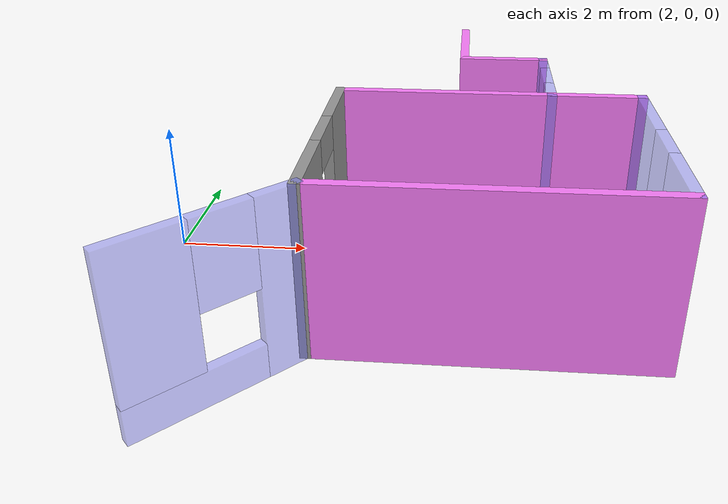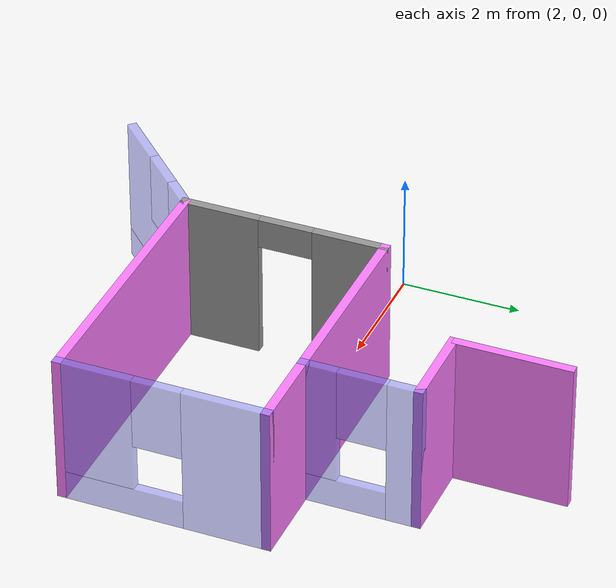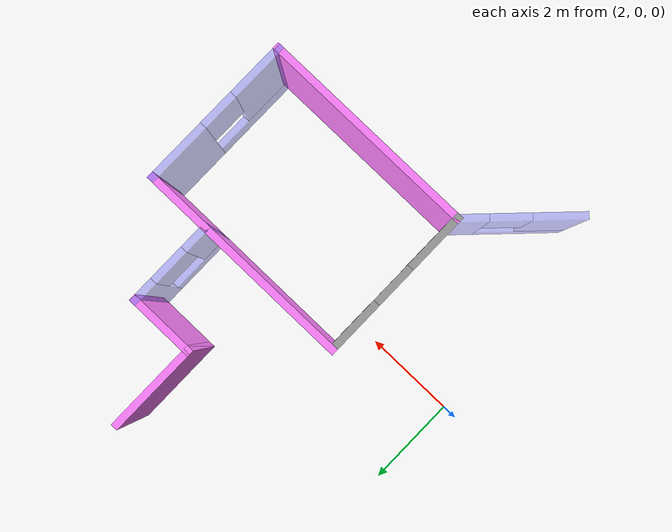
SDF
<sdf version="1.6">
 <model name="house">
  <link name="Wall_10">
   <pose>3.72086 -3.525 0 0 0 -2.35619</pose>
   <inertial>
    <mass>1</mass>
    <inertia><ixx>1</ixx><ixy>0</ixy><ixz>0</ixz><iyy>1</iyy><iyz>0</iyz><izz>1</izz></inertia>
   </inertial>
   <visual name="Wall_10_Visual_0">
    <pose>-0.917996 0 1.25 0 -0 0</pose>
    <geometry><box><size>0.664008 0.15 2.5</size></box></geometry>
    <material>
     <script><uri>file://media/materials/scripts/gazebo.material</uri><name>Gazebo/Grey</name></script>
     <ambient>0.5 0.5 1 0.5</ambient>
     <shader type="pixel"><normal_map>__default__</normal_map></shader>
     <diffuse>0.7 0.7 0.7 1</diffuse>
     <specular>0.01 0.01 0.01 1</specular>
     <emissive>0 0 0 1</emissive>
    </material>
    <meta><layer>0</layer></meta>
   </visual>
   <visual name="Wall_10_Visual_1">
    <pose>0.332004 0 0.25 0 -0 0</pose>
    <geometry><box><size>1.83599 0.15 0.5</size></box></geometry>
    <material>
     <script><uri>file://media/materials/scripts/gazebo.material</uri><name>Gazebo/Grey</name></script>
     <ambient>0.5 0.5 1 0.5</ambient>
     <shader type="pixel"><normal_map>__default__</normal_map></shader>
     <diffuse>0.7 0.7 0.7 1</diffuse>
     <specular>0.01 0.01 0.01 1</specular>
     <emissive>0 0 0 1</emissive>
    </material>
    <meta><layer>0</layer></meta>
   </visual>
   <visual name="Wall_10_Visual_2">
    <pose>0.732004 0 1.5 0 -0 0</pose>
    <geometry><box><size>1.03599 0.15 2</size></box></geometry>
    <material>
     <script><uri>file://media/materials/scripts/gazebo.material</uri><name>Gazebo/Grey</name></script>
     <ambient>0.5 0.5 1 0.5</ambient>
     <shader type="pixel"><normal_map>__default__</normal_map></shader>
     <diffuse>0.7 0.7 0.7 1</diffuse>
     <specular>0.01 0.01 0.01 1</specular>
     <emissive>0 0 0 1</emissive>
    </material>
    <meta><layer>0</layer></meta>
   </visual>
   <visual name="Wall_10_Visual_3">
    <pose>-0.185992 0 1.9 0 -0 0</pose>
    <geometry><box><size>0.8 0.15 1.2</size></box></geometry>
    <material>
     <script><uri>file://media/materials/scripts/gazebo.material</uri><name>Gazebo/Grey</name></script>
     <ambient>0.5 0.5 1 0.5</ambient>
     <shader type="pixel"><normal_map>__default__</normal_map></shader>
     <diffuse>0.7 0.7 0.7 1</diffuse>
     <specular>0.01 0.01 0.01 1</specular>
     <emissive>0 0 0 1</emissive>
    </material>
    <meta><layer>0</layer></meta>
   </visual>
   <collision name="Wall_10_Collision_0">
    <pose>-0.917996 0 1.25 0 -0 0</pose>
    <geometry><box><size>0.664008 0.15 2.5</size></box></geometry>
    <surface>
     <friction>
      <ode><mu>1</mu><mu2>1</mu2><fdir1>0 0 0</fdir1><slip1>0</slip1><slip2>0</slip2></ode>
      <torsional>
       <coefficient>1</coefficient>
       <patch_radius>0</patch_radius>
       <surface_radius>0</surface_radius>
       <use_patch_radius>1</use_patch_radius>
       <ode><slip>0</slip></ode>
      </torsional>
     </friction>
     <bounce><restitution_coefficient>0</restitution_coefficient><threshold>1e+06</threshold></bounce>
     <contact>
      <collide_without_contact>0</collide_without_contact>
      <collide_without_contact_bitmask>1</collide_without_contact_bitmask>
      <collide_bitmask>1</collide_bitmask>
      <ode>
       <soft_cfm>0</soft_cfm>
       <soft_erp>0.2</soft_erp>
       <kp>1e+13</kp>
       <kd>1</kd>
       <max_vel>0.01</max_vel>
       <min_depth>0</min_depth>
      </ode>
      <bullet>
       <split_impulse>1</split_impulse>
       <split_impulse_penetration_threshold>-0.01</split_impulse_penetration_threshold>
       <soft_cfm>0</soft_cfm>
       <soft_erp>0.2</soft_erp>
       <kp>1e+13</kp>
       <kd>1</kd>
      </bullet>
     </contact>
    </surface>
   </collision>
   <collision name="Wall_10_Collision_1">
    <pose>0.332004 0 0.25 0 -0 0</pose>
    <geometry><box><size>1.83599 0.15 0.5</size></box></geometry>
    <surface>
     <friction>
      <ode><mu>1</mu><mu2>1</mu2><fdir1>0 0 0</fdir1><slip1>0</slip1><slip2>0</slip2></ode>
      <torsional>
       <coefficient>1</coefficient>
       <patch_radius>0</patch_radius>
       <surface_radius>0</surface_radius>
       <use_patch_radius>1</use_patch_radius>
       <ode><slip>0</slip></ode>
      </torsional>
     </friction>
     <bounce><restitution_coefficient>0</restitution_coefficient><threshold>1e+06</threshold></bounce>
     <contact>
      <collide_without_contact>0</collide_without_contact>
      <collide_without_contact_bitmask>1</collide_without_contact_bitmask>
      <collide_bitmask>1</collide_bitmask>
      <ode>
       <soft_cfm>0</soft_cfm>
       <soft_erp>0.2</soft_erp>
       <kp>1e+13</kp>
       <kd>1</kd>
       <max_vel>0.01</max_vel>
       <min_depth>0</min_depth>
      </ode>
      <bullet>
       <split_impulse>1</split_impulse>
       <split_impulse_penetration_threshold>-0.01</split_impulse_penetration_threshold>
       <soft_cfm>0</soft_cfm>
       <soft_erp>0.2</soft_erp>
       <kp>1e+13</kp>
       <kd>1</kd>
      </bullet>
     </contact>
    </surface>
   </collision>
   <collision name="Wall_10_Collision_2">
    <pose>0.732004 0 1.5 0 -0 0</pose>
    <geometry><box><size>1.03599 0.15 2</size></box></geometry>
    <surface>
     <friction>
      <ode><mu>1</mu><mu2>1</mu2><fdir1>0 0 0</fdir1><slip1>0</slip1><slip2>0</slip2></ode>
      <torsional>
       <coefficient>1</coefficient>
       <patch_radius>0</patch_radius>
       <surface_radius>0</surface_radius>
       <use_patch_radius>1</use_patch_radius>
       <ode><slip>0</slip></ode>
      </torsional>
     </friction>
     <bounce><restitution_coefficient>0</restitution_coefficient><threshold>1e+06</threshold></bounce>
     <contact>
      <collide_without_contact>0</collide_without_contact>
      <collide_without_contact_bitmask>1</collide_without_contact_bitmask>
      <collide_bitmask>1</collide_bitmask>
      <ode>
       <soft_cfm>0</soft_cfm>
       <soft_erp>0.2</soft_erp>
       <kp>1e+13</kp>
       <kd>1</kd>
       <max_vel>0.01</max_vel>
       <min_depth>0</min_depth>
      </ode>
      <bullet>
       <split_impulse>1</split_impulse>
       <split_impulse_penetration_threshold>-0.01</split_impulse_penetration_threshold>
       <soft_cfm>0</soft_cfm>
       <soft_erp>0.2</soft_erp>
       <kp>1e+13</kp>
       <kd>1</kd>
      </bullet>
     </contact>
    </surface>
   </collision>
   <collision name="Wall_10_Collision_3">
    <pose>-0.185992 0 1.9 0 -0 0</pose>
    <geometry><box><size>0.8 0.15 1.2</size></box></geometry>
    <surface>
     <friction>
      <ode><mu>1</mu><mu2>1</mu2><fdir1>0 0 0</fdir1><slip1>0</slip1><slip2>0</slip2></ode>
      <torsional>
       <coefficient>1</coefficient>
       <patch_radius>0</patch_radius>
       <surface_radius>0</surface_radius>
       <use_patch_radius>1</use_patch_radius>
       <ode><slip>0</slip></ode>
      </torsional>
     </friction>
     <bounce><restitution_coefficient>0</restitution_coefficient><threshold>1e+06</threshold></bounce>
     <contact>
      <collide_without_contact>0</collide_without_contact>
      <collide_without_contact_bitmask>1</collide_without_contact_bitmask>
      <collide_bitmask>1</collide_bitmask>
      <ode>
       <soft_cfm>0</soft_cfm>
       <soft_erp>0.2</soft_erp>
       <kp>1e+13</kp>
       <kd>1</kd>
       <max_vel>0.01</max_vel>
       <min_depth>0</min_depth>
      </ode>
      <bullet>
       <split_impulse>1</split_impulse>
       <split_impulse_penetration_threshold>-0.01</split_impulse_penetration_threshold>
       <soft_cfm>0</soft_cfm>
       <soft_erp>0.2</soft_erp>
       <kp>1e+13</kp>
       <kd>1</kd>
      </bullet>
     </contact>
    </surface>
   </collision>
  </link>
  <link name="Wall_24">
   <pose>4.55171 -1.01915 0 0 -0 1.5708</pose>
   <inertial>
    <mass>1</mass>
    <inertia><ixx>1</ixx><ixy>0</ixy><ixz>0</ixz><iyy>1</iyy><iyz>0</iyz><izz>1</izz></inertia>
   </inertial>
   <visual name="Wall_24_Visual_0">
    <pose>-1.0809 0 1.25 0 -0 0</pose>
    <geometry><box><size>1.3382 0.15 2.5</size></box></geometry>
    <material>
     <script><uri>file://media/materials/scripts/gazebo.material</uri><name>Gazebo/Grey</name></script>
     <ambient>0.5 0.5 0.5 0.5</ambient>
     <shader type="pixel"><normal_map>__default__</normal_map></shader>
     <diffuse>0.7 0.7 0.7 1</diffuse>
     <specular>0.01 0.01 0.01 1</specular>
     <emissive>0 0 0 1</emissive>
    </material>
    <meta><layer>0</layer></meta>
   </visual>
   <visual name="Wall_24_Visual_1">
    <pose>1.1191 0 1.25 0 -0 0</pose>
    <geometry><box><size>1.2618 0.15 2.5</size></box></geometry>
    <material>
     <script><uri>file://media/materials/scripts/gazebo.material</uri><name>Gazebo/Grey</name></script>
     <ambient>0.5 0.5 0.5 0.5</ambient>
     <shader type="pixel"><normal_map>__default__</normal_map></shader>
     <diffuse>0.7 0.7 0.7 1</diffuse>
     <specular>0.01 0.01 0.01 1</specular>
     <emissive>0 0 0 1</emissive>
    </material>
    <meta><layer>0</layer></meta>
   </visual>
   <visual name="Wall_24_Visual_2">
    <pose>0.038199 0 2.25 0 -0 0</pose>
    <geometry><box><size>0.9 0.15 0.5</size></box></geometry>
    <material>
     <script><uri>file://media/materials/scripts/gazebo.material</uri><name>Gazebo/Grey</name></script>
     <ambient>0.5 0.5 0.5 0.5</ambient>
     <shader type="pixel"><normal_map>__default__</normal_map></shader>
     <diffuse>0.7 0.7 0.7 1</diffuse>
     <specular>0.01 0.01 0.01 1</specular>
     <emissive>0 0 0 1</emissive>
    </material>
    <meta><layer>0</layer></meta>
   </visual>
   <collision name="Wall_24_Collision_0">
    <pose>-1.0809 0 1.25 0 -0 0</pose>
    <geometry><box><size>1.3382 0.15 2.5</size></box></geometry>
    <surface>
     <friction>
      <ode><mu>1</mu><mu2>1</mu2><fdir1>0 0 0</fdir1><slip1>0</slip1><slip2>0</slip2></ode>
      <torsional>
       <coefficient>1</coefficient>
       <patch_radius>0</patch_radius>
       <surface_radius>0</surface_radius>
       <use_patch_radius>1</use_patch_radius>
       <ode><slip>0</slip></ode>
      </torsional>
     </friction>
     <bounce><restitution_coefficient>0</restitution_coefficient><threshold>1e+06</threshold></bounce>
     <contact>
      <collide_without_contact>0</collide_without_contact>
      <collide_without_contact_bitmask>1</collide_without_contact_bitmask>
      <collide_bitmask>1</collide_bitmask>
      <ode>
       <soft_cfm>0</soft_cfm>
       <soft_erp>0.2</soft_erp>
       <kp>1e+13</kp>
       <kd>1</kd>
       <max_vel>0.01</max_vel>
       <min_depth>0</min_depth>
      </ode>
      <bullet>
       <split_impulse>1</split_impulse>
       <split_impulse_penetration_threshold>-0.01</split_impulse_penetration_threshold>
       <soft_cfm>0</soft_cfm>
       <soft_erp>0.2</soft_erp>
       <kp>1e+13</kp>
       <kd>1</kd>
      </bullet>
     </contact>
    </surface>
   </collision>
   <collision name="Wall_24_Collision_1">
    <pose>1.1191 0 1.25 0 -0 0</pose>
    <geometry><box><size>1.2618 0.15 2.5</size></box></geometry>
    <surface>
     <friction>
      <ode><mu>1</mu><mu2>1</mu2><fdir1>0 0 0</fdir1><slip1>0</slip1><slip2>0</slip2></ode>
      <torsional>
       <coefficient>1</coefficient>
       <patch_radius>0</patch_radius>
       <surface_radius>0</surface_radius>
       <use_patch_radius>1</use_patch_radius>
       <ode><slip>0</slip></ode>
      </torsional>
     </friction>
     <bounce><restitution_coefficient>0</restitution_coefficient><threshold>1e+06</threshold></bounce>
     <contact>
      <collide_without_contact>0</collide_without_contact>
      <collide_without_contact_bitmask>1</collide_without_contact_bitmask>
      <collide_bitmask>1</collide_bitmask>
      <ode>
       <soft_cfm>0</soft_cfm>
       <soft_erp>0.2</soft_erp>
       <kp>1e+13</kp>
       <kd>1</kd>
       <max_vel>0.01</max_vel>
       <min_depth>0</min_depth>
      </ode>
      <bullet>
       <split_impulse>1</split_impulse>
       <split_impulse_penetration_threshold>-0.01</split_impulse_penetration_threshold>
       <soft_cfm>0</soft_cfm>
       <soft_erp>0.2</soft_erp>
       <kp>1e+13</kp>
       <kd>1</kd>
      </bullet>
     </contact>
    </surface>
   </collision>
   <collision name="Wall_24_Collision_2">
    <pose>0.038199 0 2.25 0 -0 0</pose>
    <geometry><box><size>0.9 0.15 0.5</size></box></geometry>
    <surface>
     <friction>
      <ode><mu>1</mu><mu2>1</mu2><fdir1>0 0 0</fdir1><slip1>0</slip1><slip2>0</slip2></ode>
      <torsional>
       <coefficient>1</coefficient>
       <patch_radius>0</patch_radius>
       <surface_radius>0</surface_radius>
       <use_patch_radius>1</use_patch_radius>
       <ode><slip>0</slip></ode>
      </torsional>
     </friction>
     <bounce><restitution_coefficient>0</restitution_coefficient><threshold>1e+06</threshold></bounce>
     <contact>
      <collide_without_contact>0</collide_without_contact>
      <collide_without_contact_bitmask>1</collide_without_contact_bitmask>
      <collide_bitmask>1</collide_bitmask>
      <ode>
       <soft_cfm>0</soft_cfm>
       <soft_erp>0.2</soft_erp>
       <kp>1e+13</kp>
       <kd>1</kd>
       <max_vel>0.01</max_vel>
       <min_depth>0</min_depth>
      </ode>
      <bullet>
       <split_impulse>1</split_impulse>
       <split_impulse_penetration_threshold>-0.01</split_impulse_penetration_threshold>
       <soft_cfm>0</soft_cfm>
       <soft_erp>0.2</soft_erp>
       <kp>1e+13</kp>
       <kd>1</kd>
      </bullet>
     </contact>
    </surface>
   </collision>
  </link>
  <link name="Wall_25">
   <pose>6.17671 0.655851 0 0 -0 0</pose>
   <inertial>
    <mass>1</mass>
    <inertia><ixx>1</ixx><ixy>0</ixy><ixz>0</ixz><iyy>1</iyy><iyz>0</iyz><izz>1</izz></inertia>
   </inertial>
   <visual name="Wall_25_Visual">
    <pose>0 0 1.25 0 -0 0</pose>
    <geometry><box><size>3.4 0.15 2.5</size></box></geometry>
    <material>
     <script><uri>file://media/materials/scripts/gazebo.material</uri><name>Gazebo/Grey</name></script>
     <ambient>1 0.5 1 1</ambient>
     <shader type="pixel"><normal_map>__default__</normal_map></shader>
     <diffuse>0.7 0.7 0.7 1</diffuse>
     <specular>0.01 0.01 0.01 1</specular>
     <emissive>0 0 0 1</emissive>
    </material>
    <meta><layer>0</layer></meta>
   </visual>
   <collision name="Wall_25_Collision">
    <pose>0 0 1.25 0 -0 0</pose>
    <geometry><box><size>3.4 0.15 2.5</size></box></geometry>
    <surface>
     <friction>
      <ode><mu>1</mu><mu2>1</mu2><fdir1>0 0 0</fdir1><slip1>0</slip1><slip2>0</slip2></ode>
      <torsional>
       <coefficient>1</coefficient>
       <patch_radius>0</patch_radius>
       <surface_radius>0</surface_radius>
       <use_patch_radius>1</use_patch_radius>
       <ode><slip>0</slip></ode>
      </torsional>
     </friction>
     <bounce><restitution_coefficient>0</restitution_coefficient><threshold>1e+06</threshold></bounce>
     <contact>
      <collide_without_contact>0</collide_without_contact>
      <collide_without_contact_bitmask>1</collide_without_contact_bitmask>
      <collide_bitmask>1</collide_bitmask>
      <ode>
       <soft_cfm>0</soft_cfm>
       <soft_erp>0.2</soft_erp>
       <kp>1e+13</kp>
       <kd>1</kd>
       <max_vel>0.01</max_vel>
       <min_depth>0</min_depth>
      </ode>
      <bullet>
       <split_impulse>1</split_impulse>
       <split_impulse_penetration_threshold>-0.01</split_impulse_penetration_threshold>
       <soft_cfm>0</soft_cfm>
       <soft_erp>0.2</soft_erp>
       <kp>1e+13</kp>
       <kd>1</kd>
      </bullet>
     </contact>
    </surface>
   </collision>
  </link>
  <link name="Wall_4">
   <pose>6.45171 3.43085 0 0 0 -1.5708</pose>
   <inertial>
    <mass>1</mass>
    <inertia><ixx>1</ixx><ixy>0</ixy><ixz>0</ixz><iyy>1</iyy><iyz>0</iyz><izz>1</izz></inertia>
   </inertial>
   <visual name="Wall_4_Visual">
    <pose>0 0 1.25 0 -0 0</pose>
    <geometry><box><size>2 0.15 2.5</size></box></geometry>
    <material>
     <script><uri>file://media/materials/scripts/gazebo.material</uri><name>Gazebo/Grey</name></script>
     <ambient>1 0.5 1 1</ambient>
     <shader type="pixel"><normal_map>__default__</normal_map></shader>
     <diffuse>0.7 0.7 0.7 1</diffuse>
     <specular>0.01 0.01 0.01 1</specular>
     <emissive>0 0 0 1</emissive>
    </material>
    <meta><layer>0</layer></meta>
   </visual>
   <collision name="Wall_4_Collision">
    <pose>0 0 1.25 0 -0 0</pose>
    <geometry><box><size>2 0.15 2.5</size></box></geometry>
    <surface>
     <friction>
      <ode><mu>1</mu><mu2>1</mu2><fdir1>0 0 0</fdir1><slip1>0</slip1><slip2>0</slip2></ode>
      <torsional>
       <coefficient>1</coefficient>
       <patch_radius>0</patch_radius>
       <surface_radius>0</surface_radius>
       <use_patch_radius>1</use_patch_radius>
       <ode><slip>0</slip></ode>
      </torsional>
     </friction>
     <bounce><restitution_coefficient>0</restitution_coefficient><threshold>1e+06</threshold></bounce>
     <contact>
      <collide_without_contact>0</collide_without_contact>
      <collide_without_contact_bitmask>1</collide_without_contact_bitmask>
      <collide_bitmask>1</collide_bitmask>
      <ode>
       <soft_cfm>0</soft_cfm>
       <soft_erp>0.2</soft_erp>
       <kp>1e+13</kp>
       <kd>1</kd>
       <max_vel>0.01</max_vel>
       <min_depth>0</min_depth>
      </ode>
      <bullet>
       <split_impulse>1</split_impulse>
       <split_impulse_penetration_threshold>-0.01</split_impulse_penetration_threshold>
       <soft_cfm>0</soft_cfm>
       <soft_erp>0.2</soft_erp>
       <kp>1e+13</kp>
       <kd>1</kd>
      </bullet>
     </contact>
    </surface>
   </collision>
  </link>
  <link name="Wall_5">
   <pose>7.12671 2.50585 0 0 -0 0</pose>
   <inertial>
    <mass>1</mass>
    <inertia><ixx>1</ixx><ixy>0</ixy><ixz>0</ixz><iyy>1</iyy><iyz>0</iyz><izz>1</izz></inertia>
   </inertial>
   <visual name="Wall_5_Visual">
    <pose>0 0 1.25 0 -0 0</pose>
    <geometry><box><size>1.5 0.15 2.5</size></box></geometry>
    <material>
     <script><uri>file://media/materials/scripts/gazebo.material</uri><name>Gazebo/Grey</name></script>
     <ambient>1 0.5 1 1</ambient>
     <shader type="pixel"><normal_map>__default__</normal_map></shader>
     <diffuse>0.7 0.7 0.7 1</diffuse>
     <specular>0.01 0.01 0.01 1</specular>
     <emissive>0 0 0 1</emissive>
    </material>
    <meta><layer>0</layer></meta>
   </visual>
   <collision name="Wall_5_Collision">
    <pose>0 0 1.25 0 -0 0</pose>
    <geometry><box><size>1.5 0.15 2.5</size></box></geometry>
    <surface>
     <friction>
      <ode><mu>1</mu><mu2>1</mu2><fdir1>0 0 0</fdir1><slip1>0</slip1><slip2>0</slip2></ode>
      <torsional>
       <coefficient>1</coefficient>
       <patch_radius>0</patch_radius>
       <surface_radius>0</surface_radius>
       <use_patch_radius>1</use_patch_radius>
       <ode><slip>0</slip></ode>
      </torsional>
     </friction>
     <bounce><restitution_coefficient>0</restitution_coefficient><threshold>1e+06</threshold></bounce>
     <contact>
      <collide_without_contact>0</collide_without_contact>
      <collide_without_contact_bitmask>1</collide_without_contact_bitmask>
      <collide_bitmask>1</collide_bitmask>
      <ode>
       <soft_cfm>0</soft_cfm>
       <soft_erp>0.2</soft_erp>
       <kp>1e+13</kp>
       <kd>1</kd>
       <max_vel>0.01</max_vel>
       <min_depth>0</min_depth>
      </ode>
      <bullet>
       <split_impulse>1</split_impulse>
       <split_impulse_penetration_threshold>-0.01</split_impulse_penetration_threshold>
       <soft_cfm>0</soft_cfm>
       <soft_erp>0.2</soft_erp>
       <kp>1e+13</kp>
       <kd>1</kd>
      </bullet>
     </contact>
    </surface>
   </collision>
  </link>
  <link name="Wall_6">
   <pose>7.80171 1.58085 0 0 0 -1.5708</pose>
   <inertial>
    <mass>1</mass>
    <inertia><ixx>1</ixx><ixy>0</ixy><ixz>0</ixz><iyy>1</iyy><iyz>0</iyz><izz>1</izz></inertia>
   </inertial>
   <visual name="Wall_6_Visual_0">
    <pose>-0.718403 0 1.25 0 -0 0</pose>
    <geometry><box><size>0.563194 0.15 2.5</size></box></geometry>
    <material>
     <script><uri>file://media/materials/scripts/gazebo.material</uri><name>Gazebo/Grey</name></script>
     <ambient>0.5 0.5 1 0.5</ambient>
     <shader type="pixel"><normal_map>__default__</normal_map></shader>
     <diffuse>0.7 0.7 0.7 1</diffuse>
     <specular>0.01 0.01 0.01 1</specular>
     <emissive>0 0 0 1</emissive>
    </material>
    <meta><layer>0</layer></meta>
   </visual>
   <visual name="Wall_6_Visual_1">
    <pose>0.281597 0 0.25 0 -0 0</pose>
    <geometry><box><size>1.43681 0.15 0.5</size></box></geometry>
    <material>
     <script><uri>file://media/materials/scripts/gazebo.material</uri><name>Gazebo/Grey</name></script>
     <ambient>0.5 0.5 1 0.5</ambient>
     <shader type="pixel"><normal_map>__default__</normal_map></shader>
     <diffuse>0.7 0.7 0.7 1</diffuse>
     <specular>0.01 0.01 0.01 1</specular>
     <emissive>0 0 0 1</emissive>
    </material>
    <meta><layer>0</layer></meta>
   </visual>
   <visual name="Wall_6_Visual_2">
    <pose>0.681597 0 1.5 0 -0 0</pose>
    <geometry><box><size>0.636806 0.15 2</size></box></geometry>
    <material>
     <script><uri>file://media/materials/scripts/gazebo.material</uri><name>Gazebo/Grey</name></script>
     <ambient>0.5 0.5 1 0.5</ambient>
     <shader type="pixel"><normal_map>__default__</normal_map></shader>
     <diffuse>0.7 0.7 0.7 1</diffuse>
     <specular>0.01 0.01 0.01 1</specular>
     <emissive>0 0 0 1</emissive>
    </material>
    <meta><layer>0</layer></meta>
   </visual>
   <visual name="Wall_6_Visual_3">
    <pose>-0.036806 0 1.9 0 -0 0</pose>
    <geometry><box><size>0.8 0.15 1.2</size></box></geometry>
    <material>
     <script><uri>file://media/materials/scripts/gazebo.material</uri><name>Gazebo/Grey</name></script>
     <ambient>0.5 0.5 1 0.5</ambient>
     <shader type="pixel"><normal_map>__default__</normal_map></shader>
     <diffuse>0.7 0.7 0.7 1</diffuse>
     <specular>0.01 0.01 0.01 1</specular>
     <emissive>0 0 0 1</emissive>
    </material>
    <meta><layer>0</layer></meta>
   </visual>
   <collision name="Wall_6_Collision_3">
    <pose>-0.036806 0 1.9 0 -0 0</pose>
    <geometry><box><size>0.8 0.15 1.2</size></box></geometry>
    <surface>
     <friction>
      <ode><mu>1</mu><mu2>1</mu2><fdir1>0 0 0</fdir1><slip1>0</slip1><slip2>0</slip2></ode>
      <torsional>
       <coefficient>1</coefficient>
       <patch_radius>0</patch_radius>
       <surface_radius>0</surface_radius>
       <use_patch_radius>1</use_patch_radius>
       <ode><slip>0</slip></ode>
      </torsional>
     </friction>
     <bounce><restitution_coefficient>0</restitution_coefficient><threshold>1e+06</threshold></bounce>
     <contact>
      <collide_without_contact>0</collide_without_contact>
      <collide_without_contact_bitmask>1</collide_without_contact_bitmask>
      <collide_bitmask>1</collide_bitmask>
      <ode>
       <soft_cfm>0</soft_cfm>
       <soft_erp>0.2</soft_erp>
       <kp>1e+13</kp>
       <kd>1</kd>
       <max_vel>0.01</max_vel>
       <min_depth>0</min_depth>
      </ode>
      <bullet>
       <split_impulse>1</split_impulse>
       <split_impulse_penetration_threshold>-0.01</split_impulse_penetration_threshold>
       <soft_cfm>0</soft_cfm>
       <soft_erp>0.2</soft_erp>
       <kp>1e+13</kp>
       <kd>1</kd>
      </bullet>
     </contact>
    </surface>
   </collision>
   <collision name="Wall_6_Collision_0">
    <pose>-0.718403 0 1.25 0 -0 0</pose>
    <geometry><box><size>0.563194 0.15 2.5</size></box></geometry>
    <surface>
     <friction>
      <ode><mu>1</mu><mu2>1</mu2><fdir1>0 0 0</fdir1><slip1>0</slip1><slip2>0</slip2></ode>
      <torsional>
       <coefficient>1</coefficient>
       <patch_radius>0</patch_radius>
       <surface_radius>0</surface_radius>
       <use_patch_radius>1</use_patch_radius>
       <ode><slip>0</slip></ode>
      </torsional>
     </friction>
     <bounce><restitution_coefficient>0</restitution_coefficient><threshold>1e+06</threshold></bounce>
     <contact>
      <collide_without_contact>0</collide_without_contact>
      <collide_without_contact_bitmask>1</collide_without_contact_bitmask>
      <collide_bitmask>1</collide_bitmask>
      <ode>
       <soft_cfm>0</soft_cfm>
       <soft_erp>0.2</soft_erp>
       <kp>1e+13</kp>
       <kd>1</kd>
       <max_vel>0.01</max_vel>
       <min_depth>0</min_depth>
      </ode>
      <bullet>
       <split_impulse>1</split_impulse>
       <split_impulse_penetration_threshold>-0.01</split_impulse_penetration_threshold>
       <soft_cfm>0</soft_cfm>
       <soft_erp>0.2</soft_erp>
       <kp>1e+13</kp>
       <kd>1</kd>
      </bullet>
     </contact>
    </surface>
   </collision>
   <collision name="Wall_6_Collision_1">
    <pose>0.281597 0 0.25 0 -0 0</pose>
    <geometry><box><size>1.43681 0.15 0.5</size></box></geometry>
    <surface>
     <friction>
      <ode><mu>1</mu><mu2>1</mu2><fdir1>0 0 0</fdir1><slip1>0</slip1><slip2>0</slip2></ode>
      <torsional>
       <coefficient>1</coefficient>
       <patch_radius>0</patch_radius>
       <surface_radius>0</surface_radius>
       <use_patch_radius>1</use_patch_radius>
       <ode><slip>0</slip></ode>
      </torsional>
     </friction>
     <bounce><restitution_coefficient>0</restitution_coefficient><threshold>1e+06</threshold></bounce>
     <contact>
      <collide_without_contact>0</collide_without_contact>
      <collide_without_contact_bitmask>1</collide_without_contact_bitmask>
      <collide_bitmask>1</collide_bitmask>
      <ode>
       <soft_cfm>0</soft_cfm>
       <soft_erp>0.2</soft_erp>
       <kp>1e+13</kp>
       <kd>1</kd>
       <max_vel>0.01</max_vel>
       <min_depth>0</min_depth>
      </ode>
      <bullet>
       <split_impulse>1</split_impulse>
       <split_impulse_penetration_threshold>-0.01</split_impulse_penetration_threshold>
       <soft_cfm>0</soft_cfm>
       <soft_erp>0.2</soft_erp>
       <kp>1e+13</kp>
       <kd>1</kd>
      </bullet>
     </contact>
    </surface>
   </collision>
   <collision name="Wall_6_Collision_2">
    <pose>0.681597 0 1.5 0 -0 0</pose>
    <geometry><box><size>0.636806 0.15 2</size></box></geometry>
    <surface>
     <friction>
      <ode><mu>1</mu><mu2>1</mu2><fdir1>0 0 0</fdir1><slip1>0</slip1><slip2>0</slip2></ode>
      <torsional>
       <coefficient>1</coefficient>
       <patch_radius>0</patch_radius>
       <surface_radius>0</surface_radius>
       <use_patch_radius>1</use_patch_radius>
       <ode><slip>0</slip></ode>
      </torsional>
     </friction>
     <bounce><restitution_coefficient>0</restitution_coefficient><threshold>1e+06</threshold></bounce>
     <contact>
      <collide_without_contact>0</collide_without_contact>
      <collide_without_contact_bitmask>1</collide_without_contact_bitmask>
      <collide_bitmask>1</collide_bitmask>
      <ode>
       <soft_cfm>0</soft_cfm>
       <soft_erp>0.2</soft_erp>
       <kp>1e+13</kp>
       <kd>1</kd>
       <max_vel>0.01</max_vel>
       <min_depth>0</min_depth>
      </ode>
      <bullet>
       <split_impulse>1</split_impulse>
       <split_impulse_penetration_threshold>-0.01</split_impulse_penetration_threshold>
       <soft_cfm>0</soft_cfm>
       <soft_erp>0.2</soft_erp>
       <kp>1e+13</kp>
       <kd>1</kd>
      </bullet>
     </contact>
    </surface>
   </collision>
  </link>
  <link name="Wall_7">
   <pose>8.47671 0.655851 0 0 -0 0</pose>
   <inertial>
    <mass>1</mass>
    <inertia><ixx>1</ixx><ixy>0</ixy><ixz>0</ixz><iyy>1</iyy><iyz>0</iyz><izz>1</izz></inertia>
   </inertial>
   <visual name="Wall_7_Visual">
    <pose>0 0 1.25 0 -0 0</pose>
    <geometry><box><size>1.5 0.15 2.5</size></box></geometry>
    <material>
     <script><uri>file://media/materials/scripts/gazebo.material</uri><name>Gazebo/Grey</name></script>
     <ambient>1 0.5 1 1</ambient>
     <shader type="pixel"><normal_map>__default__</normal_map></shader>
     <diffuse>0.7 0.7 0.7 1</diffuse>
     <specular>0.01 0.01 0.01 1</specular>
     <emissive>0 0 0 1</emissive>
    </material>
    <meta><layer>0</layer></meta>
   </visual>
   <collision name="Wall_7_Collision">
    <pose>0 0 1.25 0 -0 0</pose>
    <geometry><box><size>1.5 0.15 2.5</size></box></geometry>
    <surface>
     <friction>
      <ode><mu>1</mu><mu2>1</mu2><fdir1>0 0 0</fdir1><slip1>0</slip1><slip2>0</slip2></ode>
      <torsional>
       <coefficient>1</coefficient>
       <patch_radius>0</patch_radius>
       <surface_radius>0</surface_radius>
       <use_patch_radius>1</use_patch_radius>
       <ode><slip>0</slip></ode>
      </torsional>
     </friction>
     <bounce><restitution_coefficient>0</restitution_coefficient><threshold>1e+06</threshold></bounce>
     <contact>
      <collide_without_contact>0</collide_without_contact>
      <collide_without_contact_bitmask>1</collide_without_contact_bitmask>
      <collide_bitmask>1</collide_bitmask>
      <ode>
       <soft_cfm>0</soft_cfm>
       <soft_erp>0.2</soft_erp>
       <kp>1e+13</kp>
       <kd>1</kd>
       <max_vel>0.01</max_vel>
       <min_depth>0</min_depth>
      </ode>
      <bullet>
       <split_impulse>1</split_impulse>
       <split_impulse_penetration_threshold>-0.01</split_impulse_penetration_threshold>
       <soft_cfm>0</soft_cfm>
       <soft_erp>0.2</soft_erp>
       <kp>1e+13</kp>
       <kd>1</kd>
      </bullet>
     </contact>
    </surface>
   </collision>
  </link>
  <link name="Wall_8">
   <pose>9.15171 -1.01915 0 0 0 -1.5708</pose>
   <inertial>
    <mass>1</mass>
    <inertia><ixx>1</ixx><ixy>0</ixy><ixz>0</ixz><iyy>1</iyy><iyz>0</iyz><izz>1</izz></inertia>
   </inertial>
   <visual name="Wall_8_Visual_0">
    <pose>-1.0409 0 1.25 0 -0 0</pose>
    <geometry><box><size>1.4182 0.15 2.5</size></box></geometry>
    <material>
     <script><uri>file://media/materials/scripts/gazebo.material</uri><name>Gazebo/Grey</name></script>
     <ambient>0.5 0.5 1 0.5</ambient>
     <shader type="pixel"><normal_map>__default__</normal_map></shader>
     <diffuse>0.7 0.7 0.7 1</diffuse>
     <specular>0.01 0.01 0.01 1</specular>
     <emissive>0 0 0 1</emissive>
    </material>
    <meta><layer>0</layer></meta>
   </visual>
   <visual name="Wall_8_Visual_1">
    <pose>0.709101 0 0.25 0 -0 0</pose>
    <geometry><box><size>2.0818 0.15 0.5</size></box></geometry>
    <material>
     <script><uri>file://media/materials/scripts/gazebo.material</uri><name>Gazebo/Grey</name></script>
     <ambient>0.5 0.5 1 0.5</ambient>
     <shader type="pixel"><normal_map>__default__</normal_map></shader>
     <diffuse>0.7 0.7 0.7 1</diffuse>
     <specular>0.01 0.01 0.01 1</specular>
     <emissive>0 0 0 1</emissive>
    </material>
    <meta><layer>0</layer></meta>
   </visual>
   <visual name="Wall_8_Visual_2">
    <pose>1.1091 0 1.5 0 -0 0</pose>
    <geometry><box><size>1.2818 0.15 2</size></box></geometry>
    <material>
     <script><uri>file://media/materials/scripts/gazebo.material</uri><name>Gazebo/Grey</name></script>
     <ambient>0.5 0.5 1 0.5</ambient>
     <shader type="pixel"><normal_map>__default__</normal_map></shader>
     <diffuse>0.7 0.7 0.7 1</diffuse>
     <specular>0.01 0.01 0.01 1</specular>
     <emissive>0 0 0 1</emissive>
    </material>
    <meta><layer>0</layer></meta>
   </visual>
   <visual name="Wall_8_Visual_3">
    <pose>0.068202 0 1.9 0 -0 0</pose>
    <geometry><box><size>0.8 0.15 1.2</size></box></geometry>
    <material>
     <script><uri>file://media/materials/scripts/gazebo.material</uri><name>Gazebo/Grey</name></script>
     <ambient>0.5 0.5 1 0.5</ambient>
     <shader type="pixel"><normal_map>__default__</normal_map></shader>
     <diffuse>0.7 0.7 0.7 1</diffuse>
     <specular>0.01 0.01 0.01 1</specular>
     <emissive>0 0 0 1</emissive>
    </material>
    <meta><layer>0</layer></meta>
   </visual>
   <collision name="Wall_8_Collision_0">
    <pose>-1.0409 0 1.25 0 -0 0</pose>
    <geometry><box><size>1.4182 0.15 2.5</size></box></geometry>
    <surface>
     <friction>
      <ode><mu>1</mu><mu2>1</mu2><fdir1>0 0 0</fdir1><slip1>0</slip1><slip2>0</slip2></ode>
      <torsional>
       <coefficient>1</coefficient>
       <patch_radius>0</patch_radius>
       <surface_radius>0</surface_radius>
       <use_patch_radius>1</use_patch_radius>
       <ode><slip>0</slip></ode>
      </torsional>
     </friction>
     <bounce><restitution_coefficient>0</restitution_coefficient><threshold>1e+06</threshold></bounce>
     <contact>
      <collide_without_contact>0</collide_without_contact>
      <collide_without_contact_bitmask>1</collide_without_contact_bitmask>
      <collide_bitmask>1</collide_bitmask>
      <ode>
       <soft_cfm>0</soft_cfm>
       <soft_erp>0.2</soft_erp>
       <kp>1e+13</kp>
       <kd>1</kd>
       <max_vel>0.01</max_vel>
       <min_depth>0</min_depth>
      </ode>
      <bullet>
       <split_impulse>1</split_impulse>
       <split_impulse_penetration_threshold>-0.01</split_impulse_penetration_threshold>
       <soft_cfm>0</soft_cfm>
       <soft_erp>0.2</soft_erp>
       <kp>1e+13</kp>
       <kd>1</kd>
      </bullet>
     </contact>
    </surface>
   </collision>
   <collision name="Wall_8_Collision_2">
    <pose>1.1091 0 1.5 0 -0 0</pose>
    <geometry><box><size>1.2818 0.15 2</size></box></geometry>
    <surface>
     <friction>
      <ode><mu>1</mu><mu2>1</mu2><fdir1>0 0 0</fdir1><slip1>0</slip1><slip2>0</slip2></ode>
      <torsional>
       <coefficient>1</coefficient>
       <patch_radius>0</patch_radius>
       <surface_radius>0</surface_radius>
       <use_patch_radius>1</use_patch_radius>
       <ode><slip>0</slip></ode>
      </torsional>
     </friction>
     <bounce><restitution_coefficient>0</restitution_coefficient><threshold>1e+06</threshold></bounce>
     <contact>
      <collide_without_contact>0</collide_without_contact>
      <collide_without_contact_bitmask>1</collide_without_contact_bitmask>
      <collide_bitmask>1</collide_bitmask>
      <ode>
       <soft_cfm>0</soft_cfm>
       <soft_erp>0.2</soft_erp>
       <kp>1e+13</kp>
       <kd>1</kd>
       <max_vel>0.01</max_vel>
       <min_depth>0</min_depth>
      </ode>
      <bullet>
       <split_impulse>1</split_impulse>
       <split_impulse_penetration_threshold>-0.01</split_impulse_penetration_threshold>
       <soft_cfm>0</soft_cfm>
       <soft_erp>0.2</soft_erp>
       <kp>1e+13</kp>
       <kd>1</kd>
      </bullet>
     </contact>
    </surface>
   </collision>
   <collision name="Wall_8_Collision_1">
    <pose>0.709101 0 0.25 0 -0 0</pose>
    <geometry><box><size>2.0818 0.15 0.5</size></box></geometry>
    <surface>
     <friction>
      <ode><mu>1</mu><mu2>1</mu2><fdir1>0 0 0</fdir1><slip1>0</slip1><slip2>0</slip2></ode>
      <torsional>
       <coefficient>1</coefficient>
       <patch_radius>0</patch_radius>
       <surface_radius>0</surface_radius>
       <use_patch_radius>1</use_patch_radius>
       <ode><slip>0</slip></ode>
      </torsional>
     </friction>
     <bounce><restitution_coefficient>0</restitution_coefficient><threshold>1e+06</threshold></bounce>
     <contact>
      <collide_without_contact>0</collide_without_contact>
      <collide_without_contact_bitmask>1</collide_without_contact_bitmask>
      <collide_bitmask>1</collide_bitmask>
      <ode>
       <soft_cfm>0</soft_cfm>
       <soft_erp>0.2</soft_erp>
       <kp>1e+13</kp>
       <kd>1</kd>
       <max_vel>0.01</max_vel>
       <min_depth>0</min_depth>
      </ode>
      <bullet>
       <split_impulse>1</split_impulse>
       <split_impulse_penetration_threshold>-0.01</split_impulse_penetration_threshold>
       <soft_cfm>0</soft_cfm>
       <soft_erp>0.2</soft_erp>
       <kp>1e+13</kp>
       <kd>1</kd>
      </bullet>
     </contact>
    </surface>
   </collision>
   <collision name="Wall_8_Collision_3">
    <pose>0.068202 0 1.9 0 -0 0</pose>
    <geometry><box><size>0.8 0.15 1.2</size></box></geometry>
    <surface>
     <friction>
      <ode><mu>1</mu><mu2>1</mu2><fdir1>0 0 0</fdir1><slip1>0</slip1><slip2>0</slip2></ode>
      <torsional>
       <coefficient>1</coefficient>
       <patch_radius>0</patch_radius>
       <surface_radius>0</surface_radius>
       <use_patch_radius>1</use_patch_radius>
       <ode><slip>0</slip></ode>
      </torsional>
     </friction>
     <bounce><restitution_coefficient>0</restitution_coefficient><threshold>1e+06</threshold></bounce>
     <contact>
      <collide_without_contact>0</collide_without_contact>
      <collide_without_contact_bitmask>1</collide_without_contact_bitmask>
      <collide_bitmask>1</collide_bitmask>
      <ode>
       <soft_cfm>0</soft_cfm>
       <soft_erp>0.2</soft_erp>
       <kp>1e+13</kp>
       <kd>1</kd>
       <max_vel>0.01</max_vel>
       <min_depth>0</min_depth>
      </ode>
      <bullet>
       <split_impulse>1</split_impulse>
       <split_impulse_penetration_threshold>-0.01</split_impulse_penetration_threshold>
       <soft_cfm>0</soft_cfm>
       <soft_erp>0.2</soft_erp>
       <kp>1e+13</kp>
       <kd>1</kd>
      </bullet>
     </contact>
    </surface>
   </collision>
  </link>
  <link name="Wall_9">
   <pose>6.85171 -2.69415 0 0 -0 3.14159</pose>
   <inertial>
    <mass>1</mass>
    <inertia><ixx>1</ixx><ixy>0</ixy><ixz>0</ixz><iyy>1</iyy><iyz>0</iyz><izz>1</izz></inertia>
   </inertial>
   <visual name="Wall_9_Visual">
    <pose>0 0 1.25 0 -0 0</pose>
    <geometry><box><size>4.75 0.15 2.5</size></box></geometry>
    <material>
     <script><uri>file://media/materials/scripts/gazebo.material</uri><name>Gazebo/Grey</name></script>
     <ambient>1 0.5 1 1</ambient>
     <shader type="pixel"><normal_map>__default__</normal_map></shader>
     <diffuse>0.7 0.7 0.7 1</diffuse>
     <specular>0.01 0.01 0.01 1</specular>
     <emissive>0 0 0 1</emissive>
    </material>
    <meta><layer>0</layer></meta>
   </visual>
   <collision name="Wall_9_Collision">
    <pose>0 0 1.25 0 -0 0</pose>
    <geometry><box><size>4.75 0.15 2.5</size></box></geometry>
    <surface>
     <friction>
      <ode><mu>1</mu><mu2>1</mu2><fdir1>0 0 0</fdir1><slip1>0</slip1><slip2>0</slip2></ode>
      <torsional>
       <coefficient>1</coefficient>
       <patch_radius>0</patch_radius>
       <surface_radius>0</surface_radius>
       <use_patch_radius>1</use_patch_radius>
       <ode><slip>0</slip></ode>
      </torsional>
     </friction>
     <bounce><restitution_coefficient>0</restitution_coefficient><threshold>1e+06</threshold></bounce>
     <contact>
      <collide_without_contact>0</collide_without_contact>
      <collide_without_contact_bitmask>1</collide_without_contact_bitmask>
      <collide_bitmask>1</collide_bitmask>
      <ode>
       <soft_cfm>0</soft_cfm>
       <soft_erp>0.2</soft_erp>
       <kp>1e+13</kp>
       <kd>1</kd>
       <max_vel>0.01</max_vel>
       <min_depth>0</min_depth>
      </ode>
      <bullet>
       <split_impulse>1</split_impulse>
       <split_impulse_penetration_threshold>-0.01</split_impulse_penetration_threshold>
       <soft_cfm>0</soft_cfm>
       <soft_erp>0.2</soft_erp>
       <kp>1e+13</kp>
       <kd>1</kd>
      </bullet>
     </contact>
    </surface>
   </collision>
  </link>
  <static>1</static>
 </model>
</sdf>
